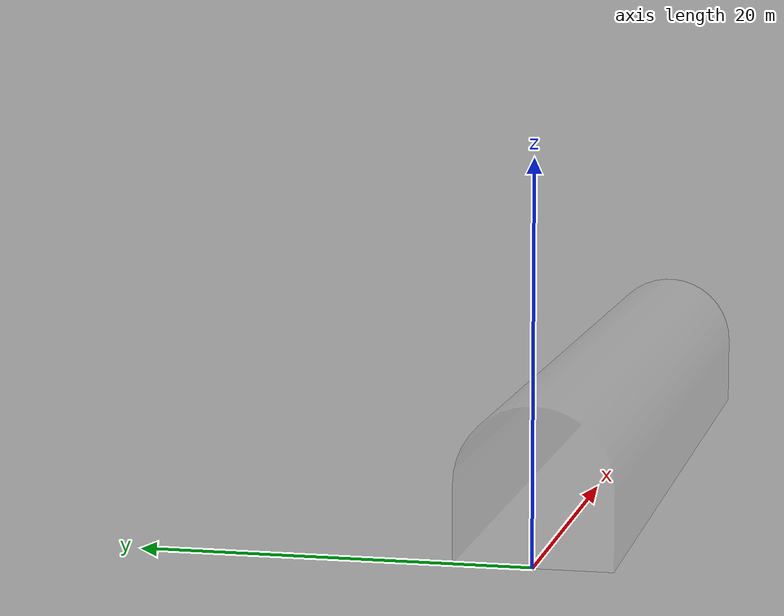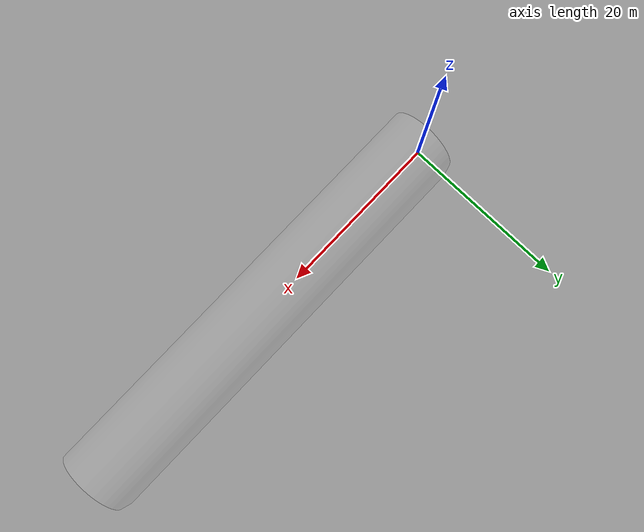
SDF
<?xml version="1.0" ?>
<sdf version="1.5">
  <model name="tunnel_straight">
    <static>true</static>
    <link name="tunnel_straight">
      <collision name="collision">
        <geometry>
          <mesh>
            <scale>1.00 1.00 1.00</scale>
            <uri>model://tunnel_straight/meshes/tunnel_straight.dae</uri>
          </mesh>
        </geometry>
      </collision>
      <visual name="visual">
        <geometry>
          <mesh>
            <scale>1.00 1.00 1.00</scale>
            <uri>model://tunnel_straight/meshes/tunnel_straight.dae</uri>
          </mesh>
        </geometry>
        <material>
          <ambient>0.8 0.8 0.8 1</ambient>
          <diffuse>0.8 0.8 0.8 1</diffuse>
          <specular>0.1 0.1 0.1 1</specular>
        </material>
        <transparency>0.85</transparency>
        <cast_shadows>false</cast_shadows>
      </visual>
    </link>
  </model>
</sdf>
